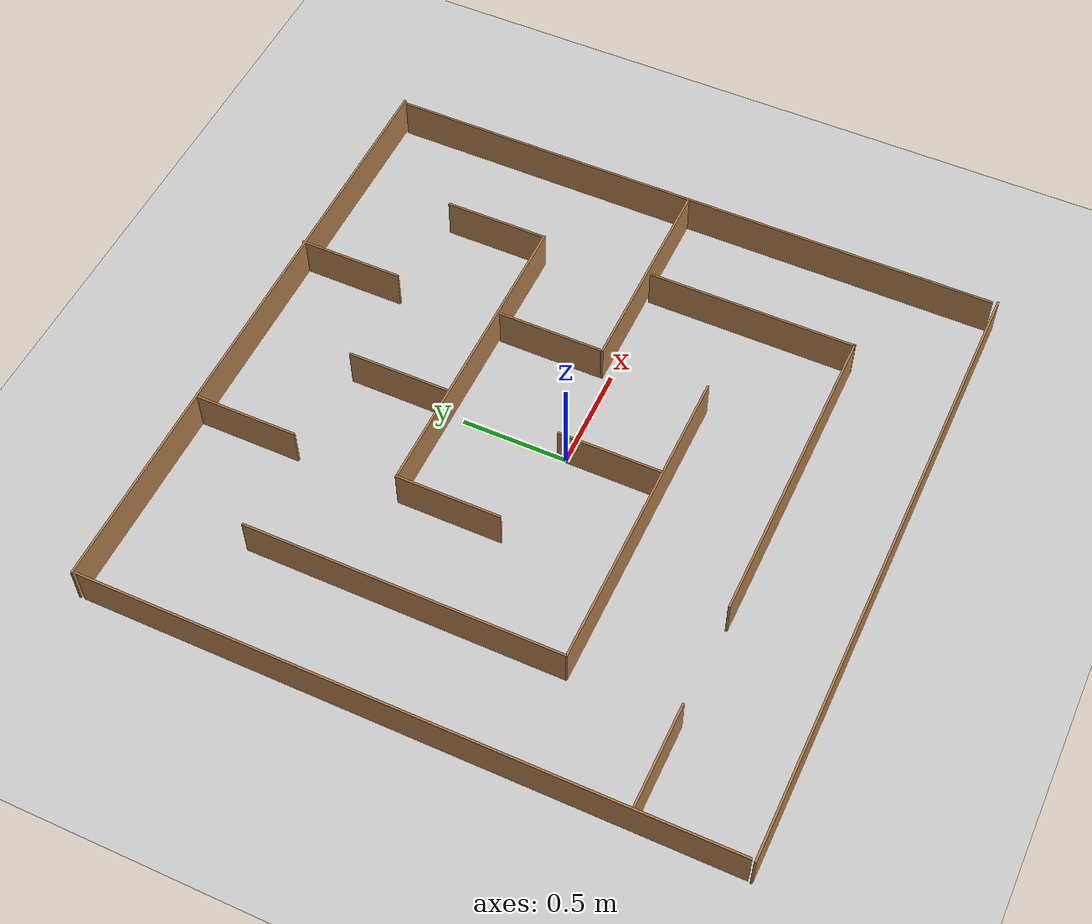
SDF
<?xml version='1.0'?>
<sdf version='1.7'>
  <world name="turtlebot3_maze">

    <!-- Physics settings -->
    <physics name="1ms" type="ignored">
      <max_step_size>0.001</max_step_size>
      <real_time_factor>1.0</real_time_factor>
    </physics>

    <!-- Plugins for Gazebo -->
    <plugin filename="gz-sim-physics-system" name="gz::sim::systems::Physics"/>
    <plugin filename="gz-sim-user-commands-system" name="gz::sim::systems::UserCommands"/>
    <plugin filename="gz-sim-scene-broadcaster-system" name="gz::sim::systems::SceneBroadcaster"/>
    <plugin filename="gz-sim-sensors-system" name="gz::sim::systems::Sensors">
      <render_engine>ogre2</render_engine>
    </plugin>

    <!-- Lighting -->
    <light type="directional" name="sun">
      <cast_shadows>true</cast_shadows>
      <pose>0 0 10 0 0 0</pose>
      <diffuse>0.8 0.8 0.8 1</diffuse>
      <specular>0.2 0.2 0.2 1</specular>
      <attenuation>
        <range>1000</range>
        <constant>0.9</constant>
        <linear>0.01</linear>
        <quadratic>0.001</quadratic>
      </attenuation>
      <direction>-0.5 0.1 -0.9</direction>
    </light>

    <!-- Ground plane -->
    <model name="ground_plane">
      <static>true</static>
      <link name="link">
        <collision name="collision">
          <geometry>
            <plane>
              <normal>0 0 1</normal>
              <size>100 100</size>
            </plane>
          </geometry>
        </collision>
        <visual name="visual">
          <geometry>
            <plane>
              <normal>0 0 1</normal>
              <size>100 100</size>
            </plane>
          </geometry>
          <material>
            <ambient>0.8 0.8 0.8 1</ambient>
            <diffuse>0.8 0.8 0.8 1</diffuse>
            <specular>0.8 0.8 0.8 1</specular>
          </material>
        </visual>
      </link>
    </model>

    <!-- Your maze model -->
    <model name='maze'>
      <pose>0.000504 0.045096 0 0 -0 0</pose>
      <link name='Wall_10'>
        <collision name='Wall_10_Collision'>
          <geometry>
            <box>
              <size>0.5 0.01 0.2</size>
            </box>
          </geometry>
          <pose>0 0 0.1 0 -0 0</pose>
        </collision>
        <visual name='Wall_10_Visual'>
          <pose>0 0 0.1 0 -0 0</pose>
          <geometry>
            <box>
              <size>0.5 0.01 0.2</size>
            </box>
          </geometry>
          <material>
            <script>
              <uri>file://media/materials/scripts/gazebo.material</uri>
              <name>Gazebo/Wood</name>
            </script>
            <ambient>1 1 1 1</ambient>
          </material>
          <meta>
            <layer>0</layer>
          </meta>
        </visual>
        <pose>-1.24376 -1.01557 0 0 -0 0</pose>
      </link>
      <link name='Wall_12'>
        <collision name='Wall_12_Collision'>
          <geometry>
            <box>
              <size>1.5 0.01 0.2</size>
            </box>
          </geometry>
          <pose>0 0 0.1 0 -0 0</pose>
        </collision>
        <visual name='Wall_12_Visual'>
          <pose>0 0 0.1 0 -0 0</pose>
          <geometry>
            <box>
              <size>1.5 0.01 0.2</size>
            </box>
          </geometry>
          <material>
            <script>
              <uri>file://media/materials/scripts/gazebo.material</uri>
              <name>Gazebo/Wood</name>
            </script>
            <ambient>1 1 1 1</ambient>
          </material>
          <meta>
            <layer>0</layer>
          </meta>
        </visual>
        <pose>0.243257 -1.01444 0 0 -0 0</pose>
      </link>
      <link name='Wall_13'>
        <collision name='Wall_13_Collision'>
          <geometry>
            <box>
              <size>1 0.01 0.2</size>
            </box>
          </geometry>
          <pose>0 0 0.1 0 -0 0</pose>
        </collision>
        <visual name='Wall_13_Visual'>
          <pose>0 0 0.1 0 -0 0</pose>
          <geometry>
            <box>
              <size>1 0.01 0.2</size>
            </box>
          </geometry>
          <material>
            <script>
              <uri>file://media/materials/scripts/gazebo.material</uri>
              <name>Gazebo/Wood</name>
            </script>
            <ambient>1 1 1 1</ambient>
          </material>
          <meta>
            <layer>0</layer>
          </meta>
        </visual>
        <pose>0.985799 -0.519443 0 0 -0 1.5708</pose>
      </link>
      <link name='Wall_15'>
        <collision name='Wall_15_Collision'>
          <geometry>
            <box>
              <size>1.5 0.01 0.2</size>
            </box>
          </geometry>
          <pose>0 0 0.1 0 -0 0</pose>
        </collision>
        <visual name='Wall_15_Visual'>
          <pose>0 0 0.1 0 -0 0</pose>
          <geometry>
            <box>
              <size>1.5 0.01 0.2</size>
            </box>
          </geometry>
          <material>
            <script>
              <uri>file://media/materials/scripts/gazebo.material</uri>
              <name>Gazebo/Wood</name>
            </script>
            <ambient>1 1 1 1</ambient>
          </material>
          <meta>
            <layer>0</layer>
          </meta>
        </visual>
        <pose>-0.992504 0.245919 0 0 -0 -1.5708</pose>
      </link>
      <link name='Wall_16'>
        <collision name='Wall_16_Collision'>
          <geometry>
            <box>
              <size>1.5 0.01 0.2</size>
            </box>
          </geometry>
          <pose>0 0 0.1 0 -0 0</pose>
        </collision>
        <visual name='Wall_16_Visual'>
          <pose>0 0 0.1 0 -0 0</pose>
          <geometry>
            <box>
              <size>1.5 0.01 0.2</size>
            </box>
          </geometry>
          <material>
            <script>
              <uri>file://media/materials/scripts/gazebo.material</uri>
              <name>Gazebo/Wood</name>
            </script>
            <ambient>1 1 1 1</ambient>
          </material>
          <meta>
            <layer>0</layer>
          </meta>
        </visual>
        <pose>-0.247504 -0.505582 0 0 -0 0</pose>
      </link>
      <link name='Wall_18'>
        <collision name='Wall_18_Collision'>
          <geometry>
            <box>
              <size>0.5 0.01 0.2</size>
            </box>
          </geometry>
          <pose>0 0 0.1 0 -0 0</pose>
        </collision>
        <visual name='Wall_18_Visual'>
          <pose>0 0 0.1 0 -0 0</pose>
          <geometry>
            <box>
              <size>0.5 0.01 0.2</size>
            </box>
          </geometry>
          <material>
            <script>
              <uri>file://media/materials/scripts/gazebo.material</uri>
              <name>Gazebo/Wood</name>
            </script>
            <ambient>1 1 1 1</ambient>
          </material>
          <meta>
            <layer>0</layer>
          </meta>
        </visual>
        <pose>-0.504056 0.274449 0 0 -0 1.5708</pose>
      </link>
      <link name='Wall_19'>
        <collision name='Wall_19_Collision'>
          <geometry>
            <box>
              <size>1.5 0.01 0.2</size>
            </box>
          </geometry>
          <pose>0 0 0.1 0 -0 0</pose>
        </collision>
        <visual name='Wall_19_Visual'>
          <pose>0 0 0.1 0 -0 0</pose>
          <geometry>
            <box>
              <size>1.5 0.01 0.2</size>
            </box>
          </geometry>
          <material>
            <script>
              <uri>file://media/materials/scripts/gazebo.material</uri>
              <name>Gazebo/Wood</name>
            </script>
            <ambient>1 1 1 1</ambient>
          </material>
          <meta>
            <layer>0</layer>
          </meta>
        </visual>
        <pose>0.240944 0.519449 0 0 -0 0</pose>
      </link>
      <link name='Wall_2'>
        <collision name='Wall_2_Collision'>
          <geometry>
            <box>
              <size>3 0.01 0.2</size>
            </box>
          </geometry>
          <pose>0 0 0.1 0 -0 0</pose>
        </collision>
        <visual name='Wall_2_Visual'>
          <pose>0 0 0.1 0 -0 0</pose>
          <geometry>
            <box>
              <size>3 0.01 0.2</size>
            </box>
          </geometry>
          <material>
            <script>
              <uri>file://media/materials/scripts/gazebo.material</uri>
              <name>Gazebo/Wood</name>
            </script>
            <ambient>1 1 1 1</ambient>
          </material>
          <meta>
            <layer>0</layer>
          </meta>
        </visual>
        <pose>-1.49168 -0.005775 0 0 -0 1.5708</pose>
      </link>
      <link name='Wall_20'>
        <collision name='Wall_20_Collision'>
          <geometry>
            <box>
              <size>0.5 0.01 0.2</size>
            </box>
          </geometry>
          <pose>0 0 0.1 0 -0 0</pose>
        </collision>
        <visual name='Wall_20_Visual'>
          <pose>0 0 0.1 0 -0 0</pose>
          <geometry>
            <box>
              <size>0.5 0.01 0.2</size>
            </box>
          </geometry>
          <material>
            <script>
              <uri>file://media/materials/scripts/gazebo.material</uri>
              <name>Gazebo/Wood</name>
            </script>
            <ambient>1 1 1 1</ambient>
          </material>
          <meta>
            <layer>0</layer>
          </meta>
        </visual>
        <pose>0.983486 0.764449 0 0 -0 1.5708</pose>
      </link>
      <link name='Wall_22'>
        <collision name='Wall_22_Collision'>
          <geometry>
            <box>
              <size>0.5 0.01 0.2</size>
            </box>
          </geometry>
          <pose>0 0 0.1 0 -0 0</pose>
        </collision>
        <visual name='Wall_22_Visual'>
          <pose>0 0 0.1 0 -0 0</pose>
          <geometry>
            <box>
              <size>0.5 0.01 0.2</size>
            </box>
          </geometry>
          <material>
            <script>
              <uri>file://media/materials/scripts/gazebo.material</uri>
              <name>Gazebo/Wood</name>
            </script>
            <ambient>1 1 1 1</ambient>
          </material>
          <meta>
            <layer>0</layer>
          </meta>
        </visual>
        <pose>-0.494684 1.27138 0 0 -0 1.5708</pose>
      </link>
      <link name='Wall_24'>
        <collision name='Wall_24_Collision'>
          <geometry>
            <box>
              <size>0.5 0.01 0.2</size>
            </box>
          </geometry>
          <pose>0 0 0.1 0 -0 0</pose>
        </collision>
        <visual name='Wall_24_Visual'>
          <pose>0 0 0.1 0 -0 0</pose>
          <geometry>
            <box>
              <size>0.5 0.01 0.2</size>
            </box>
          </geometry>
          <material>
            <script>
              <uri>file://media/materials/scripts/gazebo.material</uri>
              <name>Gazebo/Wood</name>
            </script>
            <ambient>1 1 1 1</ambient>
          </material>
          <meta>
            <layer>0</layer>
          </meta>
        </visual>
        <pose>0.487877 1.27646 0 0 -0 1.5708</pose>
      </link>
      <link name='Wall_26'>
        <collision name='Wall_26_Collision'>
          <geometry>
            <box>
              <size>0.5 0.01 0.2</size>
            </box>
          </geometry>
          <pose>0 0 0.1 0 -0 0</pose>
        </collision>
        <visual name='Wall_26_Visual'>
          <pose>0 0 0.1 0 -0 0</pose>
          <geometry>
            <box>
              <size>0.5 0.01 0.2</size>
            </box>
          </geometry>
          <material>
            <script>
              <uri>file://media/materials/scripts/gazebo.material</uri>
              <name>Gazebo/Wood</name>
            </script>
            <ambient>1 1 1 1</ambient>
          </material>
          <meta>
            <layer>0</layer>
          </meta>
        </visual>
        <pose>-0.003241 0.764741 0 0 -0 1.5708</pose>
      </link>
      <link name='Wall_28'>
        <collision name='Wall_28_Collision'>
          <geometry>
            <box>
              <size>0.5 0.01 0.2</size>
            </box>
          </geometry>
          <pose>0 0 0.1 0 -0 0</pose>
        </collision>
        <visual name='Wall_28_Visual'>
          <pose>0 0 0.1 0 -0 0</pose>
          <geometry>
            <box>
              <size>0.5 0.01 0.2</size>
            </box>
          </geometry>
          <material>
            <script>
              <uri>file://media/materials/scripts/gazebo.material</uri>
              <name>Gazebo/Wood</name>
            </script>
            <ambient>1 1 1 1</ambient>
          </material>
          <meta>
            <layer>0</layer>
          </meta>
        </visual>
        <pose>-0.006513 -0.260404 0 0 -0 1.5708</pose>
      </link>
      <link name='Wall_31'>
        <collision name='Wall_31_Collision'>
          <geometry>
            <box>
              <size>0.5 0.01 0.2</size>
            </box>
          </geometry>
          <pose>0 0 0.1 0 -0 0</pose>
        </collision>
        <visual name='Wall_31_Visual'>
          <pose>0 0 0.1 0 -0 0</pose>
          <geometry>
            <box>
              <size>0.5 0.01 0.2</size>
            </box>
          </geometry>
          <material>
            <script>
              <uri>file://media/materials/scripts/gazebo.material</uri>
              <name>Gazebo/Wood</name>
            </script>
            <ambient>1 1 1 1</ambient>
          </material>
          <meta>
            <layer>0</layer>
          </meta>
        </visual>
        <pose>0.485781 0.25703 0 0 -0 -1.5708</pose>
      </link>
      <link name='Wall_33'>
        <collision name='Wall_33_Collision'>
          <geometry>
            <box>
              <size>1 0.01 0.2</size>
            </box>
          </geometry>
          <pose>0 0 0.1 0 -0 0</pose>
        </collision>
        <visual name='Wall_33_Visual'>
          <pose>0 0 0.1 0 -0 0</pose>
          <geometry>
            <box>
              <size>1 0.01 0.2</size>
            </box>
          </geometry>
          <material>
            <script>
              <uri>file://media/materials/scripts/gazebo.material</uri>
              <name>Gazebo/Wood</name>
            </script>
            <ambient>1 1 1 1</ambient>
          </material>
          <meta>
            <layer>0</layer>
          </meta>
        </visual>
        <pose>0.981496 -0.002096 0 0 -0 0</pose>
      </link>
      <link name='Wall_4'>
        <collision name='Wall_4_Collision'>
          <geometry>
            <box>
              <size>3 0.01 0.2</size>
            </box>
          </geometry>
          <pose>0 0 0.1 0 -0 0</pose>
        </collision>
        <visual name='Wall_4_Visual'>
          <pose>0 0 0.1 0 -0 0</pose>
          <geometry>
            <box>
              <size>3 0.01 0.2</size>
            </box>
          </geometry>
          <material>
            <script>
              <uri>file://media/materials/scripts/gazebo.material</uri>
              <name>Gazebo/Wood</name>
            </script>
            <ambient>1 1 1 1</ambient>
          </material>
          <meta>
            <layer>0</layer>
          </meta>
        </visual>
        <pose>1.48452 -0.000466 0 0 -0 -1.5708</pose>
      </link>
      <link name='Wall_6'>
        <collision name='Wall_6_Collision'>
          <geometry>
            <box>
              <size>3 0.01 0.2</size>
            </box>
          </geometry>
          <pose>0 0 0.1 0 -0 0</pose>
        </collision>
        <visual name='Wall_6_Visual'>
          <pose>0 0 0.1 0 -0 0</pose>
          <geometry>
            <box>
              <size>3 0.01 0.2</size>
            </box>
          </geometry>
          <material>
            <script>
              <uri>file://media/materials/scripts/gazebo.material</uri>
              <name>Gazebo/Wood</name>
            </script>
            <ambient>1 1 1 1</ambient>
          </material>
          <meta>
            <layer>0</layer>
          </meta>
        </visual>
        <pose>-0.000809 -1.52147 0 0 -0 0</pose>
      </link>
      <link name='Wall_8'>
        <collision name='Wall_8_Collision'>
          <geometry>
            <box>
              <size>3 0.01 0.2</size>
            </box>
          </geometry>
          <pose>0 0 0.1 0 -0 0</pose>
        </collision>
        <visual name='Wall_8_Visual'>
          <pose>0 0 0.1 0 -0 0</pose>
          <geometry>
            <box>
              <size>3 0.01 0.2</size>
            </box>
          </geometry>
          <material>
            <script>
              <uri>file://media/materials/scripts/gazebo.material</uri>
              <name>Gazebo/Wood</name>
            </script>
            <ambient>1 1 1 1</ambient>
          </material>
          <meta>
            <layer>0</layer>
          </meta>
        </visual>
        <pose>0.000809 1.5148 0 0 -0 0</pose>
      </link>
      <static>1</static>
    </model>

  </world>
</sdf>
